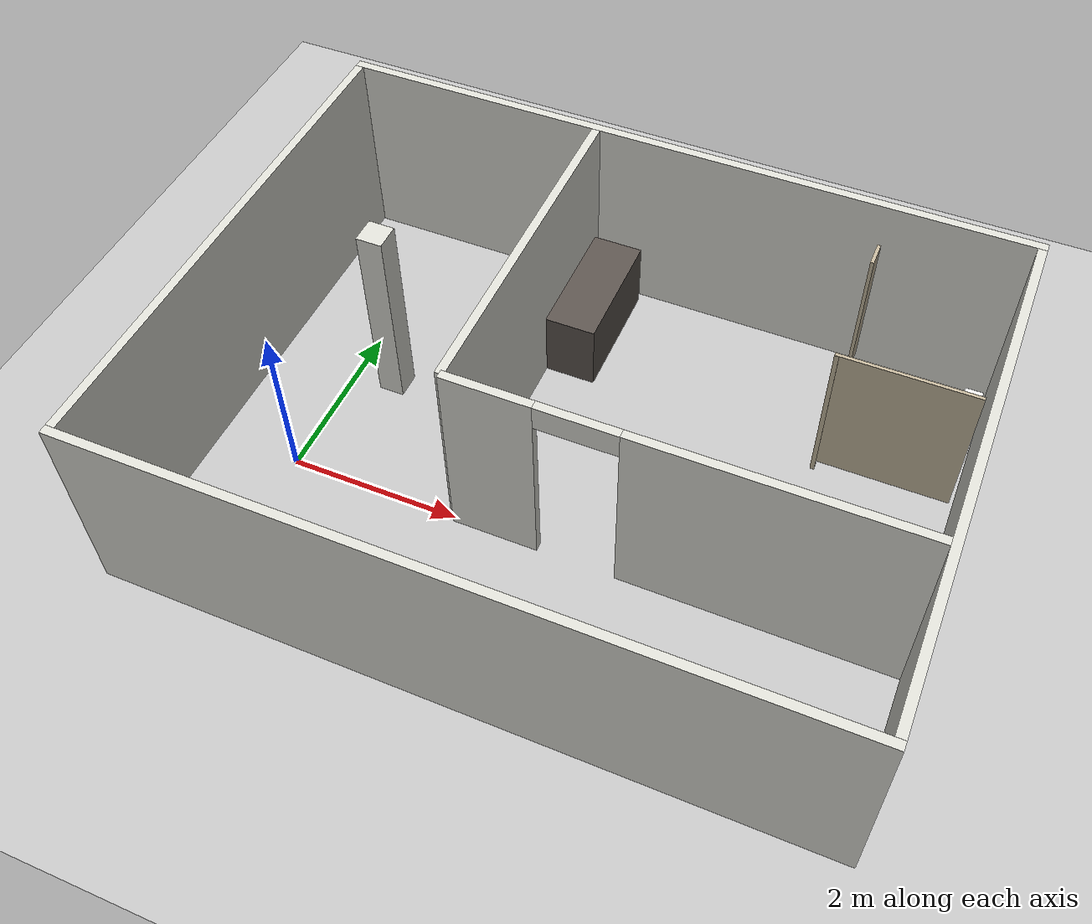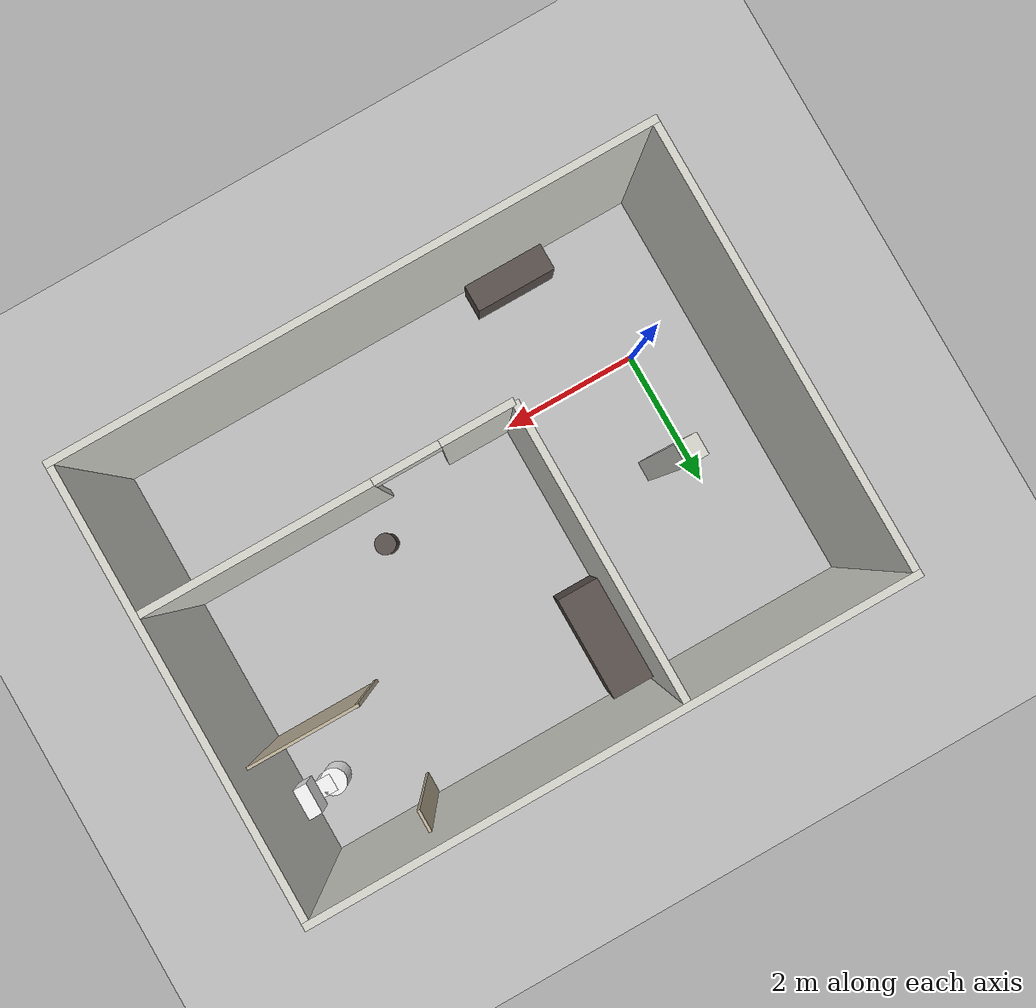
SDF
<?xml version="1.0" ?>
<sdf version="1.9">
  <world name="restroom">

    <physics name="2ms" type="ignored">
      <max_step_size>0.002</max_step_size>
      <real_time_factor>1.0</real_time_factor>
    </physics>
    <plugin filename="gz-sim-physics-system" name="gz::sim::systems::Physics"/>
    <plugin filename="gz-sim-user-commands-system" name="gz::sim::systems::UserCommands"/>
    <plugin filename="gz-sim-scene-broadcaster-system"
            name="gz::sim::systems::SceneBroadcaster"/>

    <scene>
      <ambient>0.6 0.6 0.6 1</ambient>
      <background>0.8 0.85 0.9 1</background>
    </scene>

    <light type="directional" name="sun">
      <cast_shadows>true</cast_shadows>
      <pose>0 0 10 0 0 0</pose>
      <diffuse>1 1 1 1</diffuse>
      <specular>0.3 0.3 0.3 1</specular>
      <direction>-0.4 0.2 -0.9</direction>
    </light>

    <model name="ground_plane">
      <static>true</static>
      <link name="link">
        <collision name="collision">
          <geometry><plane><normal>0 0 1</normal><size>50 50</size></plane></geometry>
          <surface>
            <friction>
              <ode><mu>50</mu></ode>
            </friction>
          </surface>
        </collision>
        <visual name="visual">
          <geometry><plane><normal>0 0 1</normal><size>50 50</size></plane></geometry>
          <material><ambient>0.75 0.75 0.75 1</ambient><diffuse>0.75 0.75 0.75 1</diffuse><specular>0.1 0.1 0.1 1</specular></material>
        </visual>
      </link>
    </model>

    <model name="building">
      <static>true</static>
      <!-- outer walls -->
      <link name="wall_south">
        <pose>3.0 -2.05 1.2 0 0 0</pose>
        <collision name="collision"><geometry><box><size>8.2 0.1 2.4</size></box></geometry></collision>
        <visual name="visual"><geometry><box><size>8.2 0.1 2.4</size></box></geometry><material><ambient>0.85 0.85 0.82 1</ambient><diffuse>0.85 0.85 0.82 1</diffuse><specular>0.1 0.1 0.1 1</specular></material></visual>
      </link>
      <link name="wall_north">
        <pose>3.0 4.05 1.2 0 0 0</pose>
        <collision name="collision"><geometry><box><size>8.2 0.1 2.4</size></box></geometry></collision>
        <visual name="visual"><geometry><box><size>8.2 0.1 2.4</size></box></geometry><material><ambient>0.85 0.85 0.82 1</ambient><diffuse>0.85 0.85 0.82 1</diffuse><specular>0.1 0.1 0.1 1</specular></material></visual>
      </link>
      <link name="wall_west">
        <pose>-1.05 1.0 1.2 0 0 0</pose>
        <collision name="collision"><geometry><box><size>0.1 6.0 2.4</size></box></geometry></collision>
        <visual name="visual"><geometry><box><size>0.1 6.0 2.4</size></box></geometry><material><ambient>0.85 0.85 0.82 1</ambient><diffuse>0.85 0.85 0.82 1</diffuse><specular>0.1 0.1 0.1 1</specular></material></visual>
      </link>
      <link name="wall_east">
        <pose>7.05 1.0 1.2 0 0 0</pose>
        <collision name="collision"><geometry><box><size>0.1 6.0 2.4</size></box></geometry></collision>
        <visual name="visual"><geometry><box><size>0.1 6.0 2.4</size></box></geometry><material><ambient>0.85 0.85 0.82 1</ambient><diffuse>0.85 0.85 0.82 1</diffuse><specular>0.1 0.1 0.1 1</specular></material></visual>
      </link>
      <!-- restroom south wall with a 0.9 m doorway at x 3.0..3.9 -->
      <link name="restroom_wall_south_a">
        <pose>2.5 0.0 1.2 0 0 0</pose>
        <collision name="collision"><geometry><box><size>1.0 0.1 2.4</size></box></geometry></collision>
        <visual name="visual"><geometry><box><size>1.0 0.1 2.4</size></box></geometry><material><ambient>0.85 0.85 0.82 1</ambient><diffuse>0.85 0.85 0.82 1</diffuse><specular>0.1 0.1 0.1 1</specular></material></visual>
      </link>
      <link name="restroom_wall_south_b">
        <pose>5.45 0.0 1.2 0 0 0</pose>
        <collision name="collision"><geometry><box><size>3.1 0.1 2.4</size></box></geometry></collision>
        <visual name="visual"><geometry><box><size>3.1 0.1 2.4</size></box></geometry><material><ambient>0.85 0.85 0.82 1</ambient><diffuse>0.85 0.85 0.82 1</diffuse><specular>0.1 0.1 0.1 1</specular></material></visual>
      </link>
      <link name="restroom_door_header">
        <pose>3.45 0.0 2.25 0 0 0</pose>
        <collision name="collision"><geometry><box><size>0.9 0.1 0.3</size></box></geometry></collision>
        <visual name="visual"><geometry><box><size>0.9 0.1 0.3</size></box></geometry><material><ambient>0.85 0.85 0.82 1</ambient><diffuse>0.85 0.85 0.82 1</diffuse><specular>0.1 0.1 0.1 1</specular></material></visual>
      </link>
      <link name="restroom_wall_west">
        <pose>2.0 2.0 1.2 0 0 0</pose>
        <collision name="collision"><geometry><box><size>0.1 4.0 2.4</size></box></geometry></collision>
        <visual name="visual"><geometry><box><size>0.1 4.0 2.4</size></box></geometry><material><ambient>0.85 0.85 0.82 1</ambient><diffuse>0.85 0.85 0.82 1</diffuse><specular>0.1 0.1 0.1 1</specular></material></visual>
      </link>
      <!-- lobby and corridor -->
      <link name="lobby_column">
        <pose>0.5 1.5 1.2 0 0 0</pose>
        <collision name="collision"><geometry><box><size>0.3 0.3 2.4</size></box></geometry></collision>
        <visual name="visual"><geometry><box><size>0.3 0.3 2.4</size></box></geometry><material><ambient>0.85 0.85 0.82 1</ambient><diffuse>0.85 0.85 0.82 1</diffuse><specular>0.1 0.1 0.1 1</specular></material></visual>
      </link>
      <link name="corridor_bench">
        <pose>1.0 -1.75 0.225 0 0 0</pose>
        <collision name="collision"><geometry><box><size>1.2 0.4 0.45</size></box></geometry></collision>
        <visual name="visual"><geometry><box><size>1.2 0.4 0.45</size></box></geometry><material><ambient>0.35 0.32 0.30 1</ambient><diffuse>0.35 0.32 0.30 1</diffuse><specular>0.1 0.1 0.1 1</specular></material></visual>
      </link>
      <!-- restroom fixtures -->
      <link name="sink_counter">
        <pose>2.35 3.15 0.425 0 0 0</pose>
        <collision name="collision"><geometry><box><size>0.6 1.5 0.85</size></box></geometry></collision>
        <visual name="visual"><geometry><box><size>0.6 1.5 0.85</size></box></geometry><material><ambient>0.35 0.32 0.30 1</ambient><diffuse>0.35 0.32 0.30 1</diffuse><specular>0.1 0.1 0.1 1</specular></material></visual>
      </link>
      <!-- stall: partitions with a 0.15 m floor gap, as in real restrooms -->
      <link name="stall_partition_side">
        <pose>6.175 2.2 1.025 0 0 0</pose>
        <collision name="collision"><geometry><box><size>1.55 0.04 1.75</size></box></geometry></collision>
        <visual name="visual"><geometry><box><size>1.55 0.04 1.75</size></box></geometry><material><ambient>0.75 0.70 0.60 1</ambient><diffuse>0.75 0.70 0.60 1</diffuse><specular>0.1 0.1 0.1 1</specular></material></visual>
      </link>
      <link name="stall_partition_post">
        <pose>5.42 2.2 0.95 0 0 0</pose>
        <collision name="collision"><geometry><box><size>0.05 0.05 1.9</size></box></geometry></collision>
        <visual name="visual"><geometry><box><size>0.05 0.05 1.9</size></box></geometry><material><ambient>0.75 0.70 0.60 1</ambient><diffuse>0.75 0.70 0.60 1</diffuse><specular>0.1 0.1 0.1 1</specular></material></visual>
      </link>
      <link name="stall_partition_front">
        <pose>5.4 3.8 1.025 0 0 0</pose>
        <collision name="collision"><geometry><box><size>0.04 0.3 1.75</size></box></geometry></collision>
        <visual name="visual"><geometry><box><size>0.04 0.3 1.75</size></box></geometry><material><ambient>0.75 0.70 0.60 1</ambient><diffuse>0.75 0.70 0.60 1</diffuse><specular>0.1 0.1 0.1 1</specular></material></visual>
      </link>
      <!-- toilet_1 (STAND-IN shape): tank, pedestal and bowl, front edge at x = 6.34 -->
      <link name="toilet_1_tank">
        <pose>6.85 3.075 0.6 0 0 0</pose>
        <collision name="collision"><geometry><box><size>0.2 0.45 0.4</size></box></geometry></collision>
        <visual name="visual"><geometry><box><size>0.2 0.45 0.4</size></box></geometry><material><ambient>0.97 0.97 0.97 1</ambient><diffuse>0.97 0.97 0.97 1</diffuse><specular>0.1 0.1 0.1 1</specular></material></visual>
      </link>
      <link name="toilet_1_pedestal">
        <pose>6.64 3.075 0.2 0 0 0</pose>
        <collision name="collision"><geometry><box><size>0.22 0.25 0.4</size></box></geometry></collision>
        <visual name="visual"><geometry><box><size>0.22 0.25 0.4</size></box></geometry><material><ambient>0.97 0.97 0.97 1</ambient><diffuse>0.97 0.97 0.97 1</diffuse><specular>0.1 0.1 0.1 1</specular></material></visual>
      </link>
      <link name="toilet_1_bowl">
        <pose>6.53 3.075 0.2 0 0 0</pose>
        <collision name="collision"><geometry><cylinder><radius>0.19</radius><length>0.4</length></cylinder></geometry></collision>
        <visual name="visual"><geometry><cylinder><radius>0.19</radius><length>0.4</length></cylinder></geometry><material><ambient>0.97 0.97 0.97 1</ambient><diffuse>0.97 0.97 0.97 1</diffuse><specular>0.1 0.1 0.1 1</specular></material></visual>
      </link>
      <link name="bin">
        <pose>4.3 0.6 0.25 0 0 0</pose>
        <collision name="collision"><geometry><cylinder><radius>0.15</radius><length>0.5</length></cylinder></geometry></collision>
        <visual name="visual"><geometry><cylinder><radius>0.15</radius><length>0.5</length></cylinder></geometry><material><ambient>0.35 0.32 0.30 1</ambient><diffuse>0.35 0.32 0.30 1</diffuse><specular>0.1 0.1 0.1 1</specular></material></visual>
      </link>
    </model>

  </world>
</sdf>
